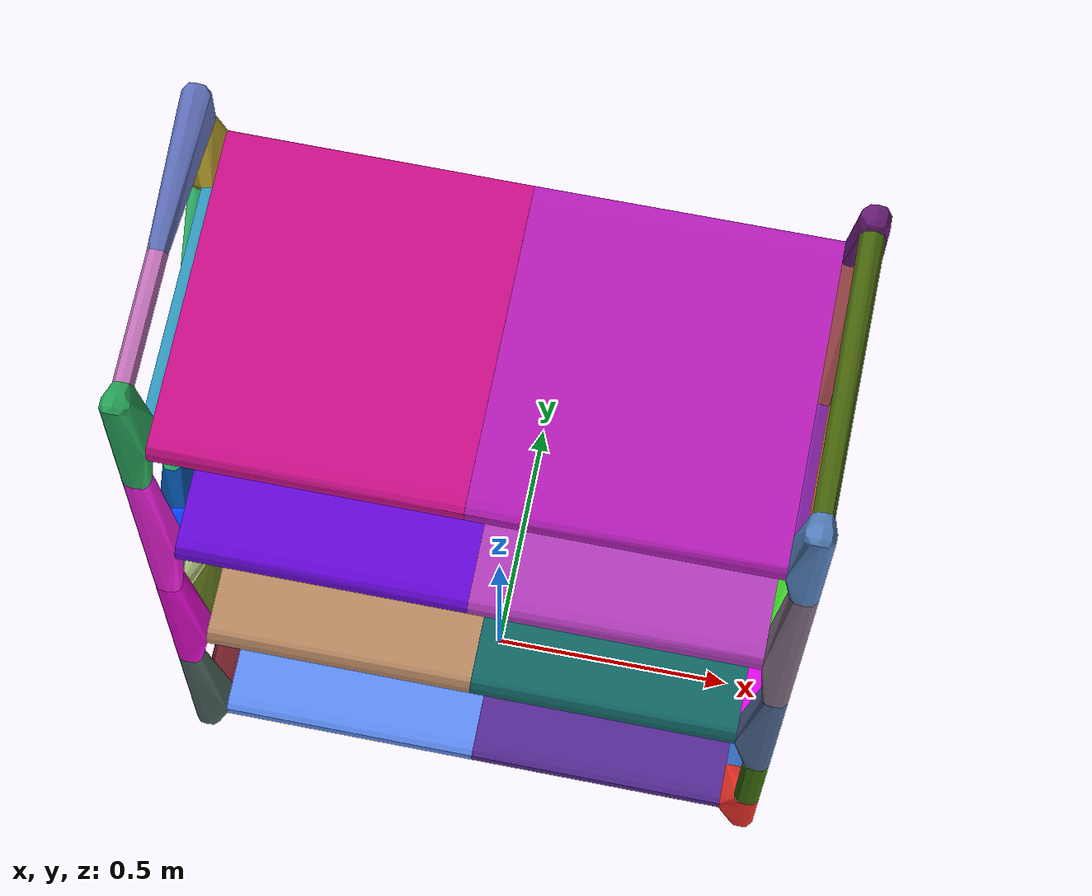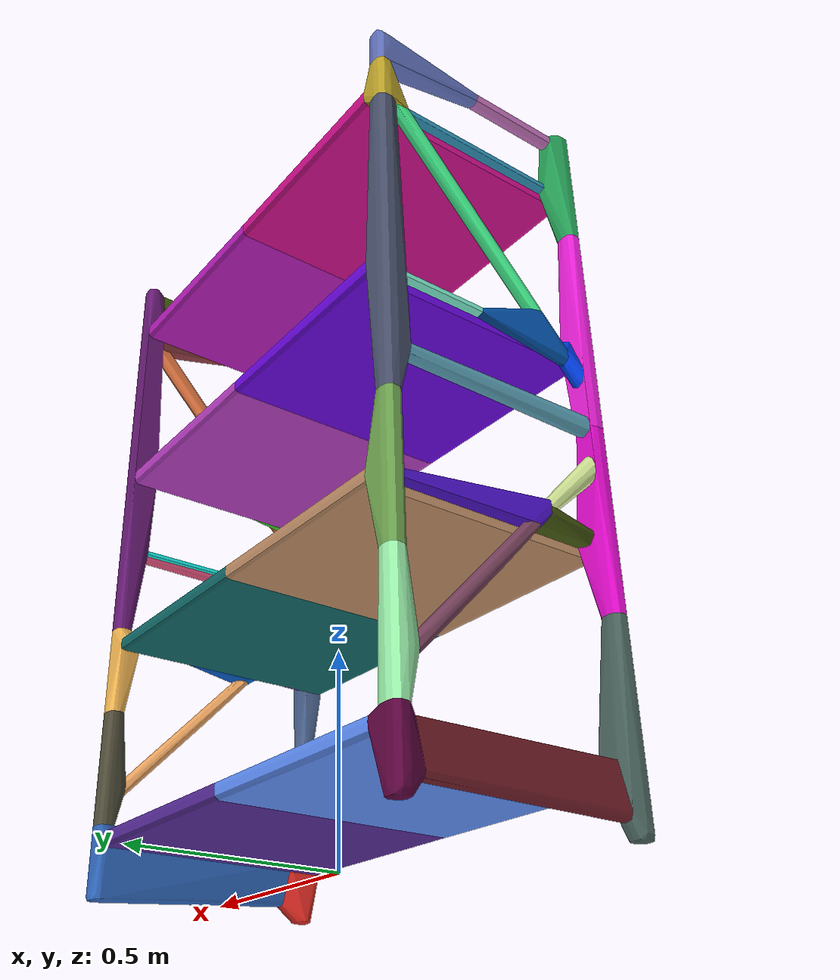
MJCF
<mujoco model="shelf">
  <default>
    <default class="visual">
      <geom group="1" type="mesh" contype="0" conaffinity="0"/>
    </default>
    <default class="collision">
      <geom group="0" type="mesh"/>
    </default>
  </default>
  <asset>
    <texture type="2d" name="material_0" file="material_0.png"/>
    <material name="material_0" texture="material_0" specular="0.4000000000000001" shininess="0.000999999"/>
    <mesh name="shelf" file="shelf.obj"/>
    <mesh name="shelf_collision_0" file="shelf_collision_0.obj"/>
    <mesh name="shelf_collision_1" file="shelf_collision_1.obj"/>
    <mesh name="shelf_collision_2" file="shelf_collision_2.obj"/>
    <mesh name="shelf_collision_3" file="shelf_collision_3.obj"/>
    <mesh name="shelf_collision_4" file="shelf_collision_4.obj"/>
    <mesh name="shelf_collision_5" file="shelf_collision_5.obj"/>
    <mesh name="shelf_collision_6" file="shelf_collision_6.obj"/>
    <mesh name="shelf_collision_7" file="shelf_collision_7.obj"/>
    <mesh name="shelf_collision_8" file="shelf_collision_8.obj"/>
    <mesh name="shelf_collision_9" file="shelf_collision_9.obj"/>
    <mesh name="shelf_collision_10" file="shelf_collision_10.obj"/>
    <mesh name="shelf_collision_11" file="shelf_collision_11.obj"/>
    <mesh name="shelf_collision_12" file="shelf_collision_12.obj"/>
    <mesh name="shelf_collision_13" file="shelf_collision_13.obj"/>
    <mesh name="shelf_collision_14" file="shelf_collision_14.obj"/>
    <mesh name="shelf_collision_15" file="shelf_collision_15.obj"/>
    <mesh name="shelf_collision_16" file="shelf_collision_16.obj"/>
    <mesh name="shelf_collision_17" file="shelf_collision_17.obj"/>
    <mesh name="shelf_collision_18" file="shelf_collision_18.obj"/>
    <mesh name="shelf_collision_19" file="shelf_collision_19.obj"/>
    <mesh name="shelf_collision_20" file="shelf_collision_20.obj"/>
    <mesh name="shelf_collision_21" file="shelf_collision_21.obj"/>
    <mesh name="shelf_collision_22" file="shelf_collision_22.obj"/>
    <mesh name="shelf_collision_23" file="shelf_collision_23.obj"/>
    <mesh name="shelf_collision_24" file="shelf_collision_24.obj"/>
    <mesh name="shelf_collision_25" file="shelf_collision_25.obj"/>
    <mesh name="shelf_collision_26" file="shelf_collision_26.obj"/>
    <mesh name="shelf_collision_27" file="shelf_collision_27.obj"/>
    <mesh name="shelf_collision_28" file="shelf_collision_28.obj"/>
    <mesh name="shelf_collision_29" file="shelf_collision_29.obj"/>
    <mesh name="shelf_collision_30" file="shelf_collision_30.obj"/>
    <mesh name="shelf_collision_31" file="shelf_collision_31.obj"/>
    <mesh name="shelf_collision_32" file="shelf_collision_32.obj"/>
    <mesh name="shelf_collision_33" file="shelf_collision_33.obj"/>
    <mesh name="shelf_collision_34" file="shelf_collision_34.obj"/>
    <mesh name="shelf_collision_35" file="shelf_collision_35.obj"/>
    <mesh name="shelf_collision_36" file="shelf_collision_36.obj"/>
    <mesh name="shelf_collision_37" file="shelf_collision_37.obj"/>
    <mesh name="shelf_collision_38" file="shelf_collision_38.obj"/>
    <mesh name="shelf_collision_39" file="shelf_collision_39.obj"/>
    <mesh name="shelf_collision_40" file="shelf_collision_40.obj"/>
    <mesh name="shelf_collision_41" file="shelf_collision_41.obj"/>
    <mesh name="shelf_collision_42" file="shelf_collision_42.obj"/>
    <mesh name="shelf_collision_43" file="shelf_collision_43.obj"/>
    <mesh name="shelf_collision_44" file="shelf_collision_44.obj"/>
    <mesh name="shelf_collision_45" file="shelf_collision_45.obj"/>
    <mesh name="shelf_collision_46" file="shelf_collision_46.obj"/>
    <mesh name="shelf_collision_47" file="shelf_collision_47.obj"/>
    <mesh name="shelf_collision_48" file="shelf_collision_48.obj"/>
    <mesh name="shelf_collision_49" file="shelf_collision_49.obj"/>
    <mesh name="shelf_collision_50" file="shelf_collision_50.obj"/>
    <mesh name="shelf_collision_51" file="shelf_collision_51.obj"/>
  </asset>
  <worldbody>
    <body>
      <body name="object">
        <geom material="material_0" mesh="shelf" class="visual"/>
        <geom mesh="shelf_collision_0" rgba="0.7469507885742105 0.5551399029079412 0.3992775358335544 1" class="collision"/>
        <geom mesh="shelf_collision_1" rgba="0.41249731306221893 0.02344980048078449 0.8743314958485492 1" class="collision"/>
        <geom mesh="shelf_collision_2" rgba="0.7243764162803307 0.11203075593232958 0.736450281787395 1" class="collision"/>
        <geom mesh="shelf_collision_3" rgba="0.0676091062542945 0.4068225259089048 0.40492478982936175 1" class="collision"/>
        <geom mesh="shelf_collision_4" rgba="0.7144383882899927 0.23898160200474583 0.7528217267540608 1" class="collision"/>
        <geom mesh="shelf_collision_5" rgba="0.3739612668202653 0.5649782263920625 0.9822532597387555 1" class="collision"/>
        <geom mesh="shelf_collision_6" rgba="0.33837899116539505 0.16720061669544783 0.5925154787286131 1" class="collision"/>
        <geom mesh="shelf_collision_7" rgba="0.8207497394845701 0.053274298375208806 0.5544955026282979 1" class="collision"/>
        <geom mesh="shelf_collision_8" rgba="0.2849221138390585 0.3823320371538306 0.3574201537618439 1" class="collision"/>
        <geom mesh="shelf_collision_9" rgba="0.4038659497686856 0.10487408252739305 0.45560833692768843 1" class="collision"/>
        <geom mesh="shelf_collision_10" rgba="0.32486799019218415 0.5005139963726107 0.7335391229301225 1" class="collision"/>
        <geom mesh="shelf_collision_11" rgba="0.19085117942745522 0.4077268837735526 0.744135994309624 1" class="collision"/>
        <geom mesh="shelf_collision_12" rgba="0.8794746896931787 0.03951855030207241 0.7932065753318606 1" class="collision"/>
        <geom mesh="shelf_collision_13" rgba="0.8792866329716207 0.1710624669662968 0.13932879423875977 1" class="collision"/>
        <geom mesh="shelf_collision_14" rgba="0.4867939805067313 0.41500617289396224 0.48968132336729664 1" class="collision"/>
        <geom mesh="shelf_collision_15" rgba="0.28993894528858777 0.38478194248117537 0.550787117732163 1" class="collision"/>
        <geom mesh="shelf_collision_16" rgba="0.22113136168530767 0.4155005599198871 0.043204207761473934 1" class="collision"/>
        <geom mesh="shelf_collision_17" rgba="0.28429192411848103 0.3155216003260176 0.4207776658804725 1" class="collision"/>
        <geom mesh="shelf_collision_18" rgba="0.8713359872218386 0.025838629063241303 0.9026227839603324 1" class="collision"/>
        <geom mesh="shelf_collision_19" rgba="0.15068273355990702 0.6375038543357668 0.34678226694026393 1" class="collision"/>
        <geom mesh="shelf_collision_20" rgba="0.9288596069426528 0.3423804504703146 0.5117128383372672 1" class="collision"/>
        <geom mesh="shelf_collision_21" rgba="0.43826345032707736 0.11209556110493346 0.1574276620035262 1" class="collision"/>
        <geom mesh="shelf_collision_22" rgba="0.9236627858444321 0.12200409897805153 0.850998795349661 1" class="collision"/>
        <geom mesh="shelf_collision_23" rgba="0.49480319753141533 0.9423739760204033 0.8205382589342443 1" class="collision"/>
        <geom mesh="shelf_collision_24" rgba="0.35528568684562645 0.6360410357382547 0.718745068699419 1" class="collision"/>
        <geom mesh="shelf_collision_25" rgba="0.5508248674855365 0.22910424169605859 0.2510759699929398 1" class="collision"/>
        <geom mesh="shelf_collision_26" rgba="0.16258968288742492 0.7461746027758216 0.024243994098589905 1" class="collision"/>
        <geom mesh="shelf_collision_27" rgba="0.4303330076060087 0.6393519808830551 0.31099477992062896 1" class="collision"/>
        <geom mesh="shelf_collision_28" rgba="0.3754916935906133 0.44091959618575094 0.7316289334105152 1" class="collision"/>
        <geom mesh="shelf_collision_29" rgba="0.8309269842367747 0.8903279189320237 0.04214161093901958 1" class="collision"/>
        <geom mesh="shelf_collision_30" rgba="0.2769403170561142 0.35660834904698724 0.06408107811521091 1" class="collision"/>
        <geom mesh="shelf_collision_31" rgba="0.6114026182332989 0.9535253075885338 0.6768488099395727 1" class="collision"/>
        <geom mesh="shelf_collision_32" rgba="0.3656513525781929 0.02073430100437923 0.2516982175854957 1" class="collision"/>
        <geom mesh="shelf_collision_33" rgba="0.2568560158987321 0.8503480060410205 0.16391945950104214 1" class="collision"/>
        <geom mesh="shelf_collision_34" rgba="0.09238503797459874 0.9240389245870663 0.8920167592019208 1" class="collision"/>
        <geom mesh="shelf_collision_35" rgba="0.9518477836642644 0.7159906564082895 0.3257051482266029 1" class="collision"/>
        <geom mesh="shelf_collision_36" rgba="0.9142700811614339 0.481092159943889 0.2659884040386491 1" class="collision"/>
        <geom mesh="shelf_collision_37" rgba="0.7779480719480787 0.4538423187131275 0.7438660760605613 1" class="collision"/>
        <geom mesh="shelf_collision_38" rgba="0.0057157746703795365 0.26442555675319124 0.954750738843452 1" class="collision"/>
        <geom mesh="shelf_collision_39" rgba="0.2774767479189576 0.39393208482880426 0.043407960110732335 1" class="collision"/>
        <geom mesh="shelf_collision_40" rgba="0.30731482563702794 0.29647403284728024 0.21966540999325646 1" class="collision"/>
        <geom mesh="shelf_collision_41" rgba="0.9633689996313043 0.6761141921574007 0.39777094981811767 1" class="collision"/>
        <geom mesh="shelf_collision_42" rgba="0.03356275605613035 0.3714192011809553 0.796699403321573 1" class="collision"/>
        <geom mesh="shelf_collision_43" rgba="0.486815157908262 0.2685757126691627 0.37695039765720295 1" class="collision"/>
        <geom mesh="shelf_collision_44" rgba="0.2592068972838898 0.9226062330519146 0.5477722018498088 1" class="collision"/>
        <geom mesh="shelf_collision_45" rgba="0.18891245493799524 0.592285609219266 0.7405710273522068 1" class="collision"/>
        <geom mesh="shelf_collision_46" rgba="0.5290533518371399 0.12498239847941484 0.6565607339510432 1" class="collision"/>
        <geom mesh="shelf_collision_47" rgba="0.2863043932534136 0.06402218089209832 0.7631556908520692 1" class="collision"/>
        <geom mesh="shelf_collision_48" rgba="0.7384892988210954 0.9875765723931881 0.06479479224301699 1" class="collision"/>
        <geom mesh="shelf_collision_49" rgba="0.8361057017688932 0.9180233251854499 0.5950604107276805 1" class="collision"/>
        <geom mesh="shelf_collision_50" rgba="0.013076405085006404 0.3086878991930564 0.6412764631294721 1" class="collision"/>
        <geom mesh="shelf_collision_51" rgba="0.7435550192176187 0.6446286358559018 0.16527744458167104 1" class="collision"/>
      </body>
    </body>
  </worldbody>
</mujoco>
